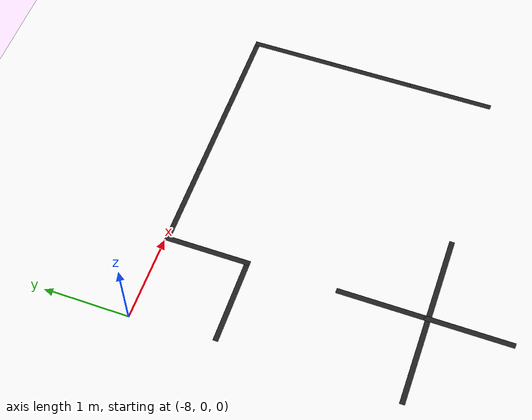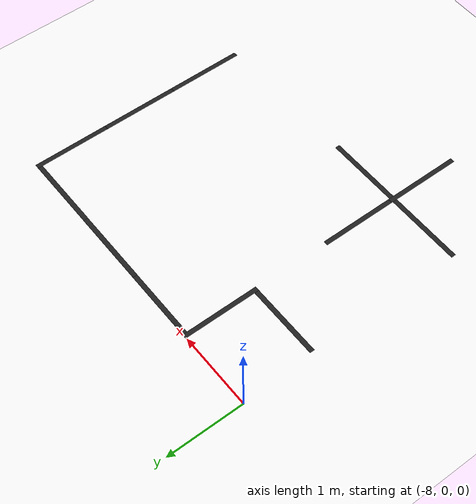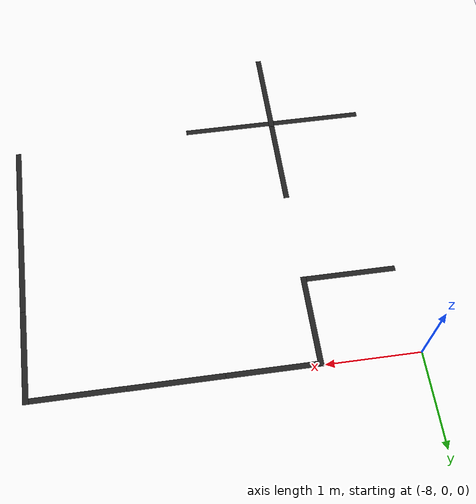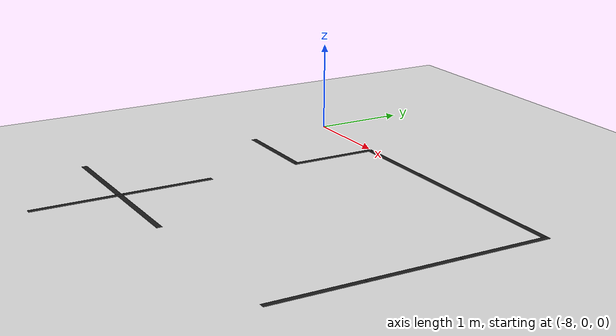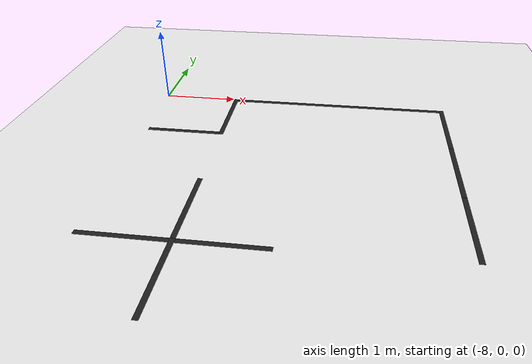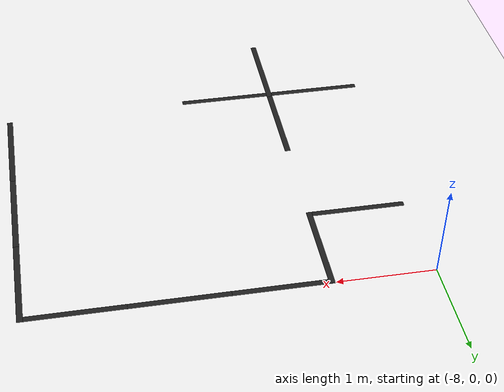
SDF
<sdf version="1.7">
 <world name="default">
  <model name="ground_plane">
   <static>1</static>
   <link name="link">
    <collision name="collision">
     <geometry><plane><normal>0 0 1</normal><size>100 100</size></plane></geometry>
     <surface>
      <contact><collide_bitmask>65535</collide_bitmask></contact>
      <friction><ode><mu>100</mu><mu2>50</mu2></ode></friction>
     </surface>
    </collision>
    <visual name="visual">
     <cast_shadows>0</cast_shadows>
     <geometry><plane><normal>0 0 1</normal><size>100 100</size></plane></geometry>
     <material>
      <script><uri>file://media/materials/scripts/gazebo.material</uri><name>Gazebo/White</name></script>
     </material>
    </visual>
   </link>
  </model>
  <model name="right_segment_1">
   <link name="right_link">
    <inertial>
     <mass>1</mass>
     <inertia>
      <ixx>0.166667</ixx>
      <ixy>0</ixy>
      <ixz>0</ixz>
      <iyy>0.166667</iyy>
      <iyz>0</iyz>
      <izz>0.166667</izz>
     </inertia>
    </inertial>
    <visual name="visual">
     <geometry><box><size>0.06 1 0.000937</size></box></geometry>
     <material>
      <script><name>Gazebo/Black</name><uri>file://media/materials/scripts/gazebo.material</uri></script>
      <shader type="pixel"><normal_map>__default__</normal_map></shader>
      <ambient>0 0 0 1</ambient>
      <diffuse>0 0 0 1</diffuse>
      <specular>0.1 0.1 0.1 1</specular>
      <emissive>0 0 0 1</emissive>
     </material>
    </visual>
    <collision name="collision">
     <geometry><box><size>0.06 1 0.000937</size></box></geometry>
     <surface>
      <friction>
       <ode><mu>1</mu><mu2>1</mu2><fdir1>0 0 0</fdir1><slip1>0</slip1><slip2>0</slip2></ode>
       <torsional>
        <coefficient>1</coefficient>
        <patch_radius>0</patch_radius>
        <surface_radius>0</surface_radius>
        <use_patch_radius>1</use_patch_radius>
        <ode><slip>0</slip></ode>
       </torsional>
      </friction>
      <bounce><restitution_coefficient>0</restitution_coefficient><threshold>1e+06</threshold></bounce>
      <contact>
       <collide_without_contact>0</collide_without_contact>
       <collide_without_contact_bitmask>1</collide_without_contact_bitmask>
       <collide_bitmask>1</collide_bitmask>
       <ode>
        <soft_cfm>0</soft_cfm>
        <soft_erp>0.2</soft_erp>
        <kp>1e+13</kp>
        <kd>1</kd>
        <max_vel>0.01</max_vel>
        <min_depth>0</min_depth>
       </ode>
       <bullet>
        <split_impulse>1</split_impulse>
        <split_impulse_penetration_threshold>-0.01</split_impulse_penetration_threshold>
        <soft_cfm>0</soft_cfm>
        <soft_erp>0.2</soft_erp>
        <kp>1e+13</kp>
        <kd>1</kd>
       </bullet>
      </contact>
     </surface>
    </collision>
   </link>
   <static>1</static>
   <pose>-6.96035 -0.49852 0.000468 0 -0 1.4e-05</pose>
  </model>
  <model name="right_segment_3">
   <link name="right_link">
    <inertial>
     <mass>1</mass>
     <inertia>
      <ixx>0.166667</ixx>
      <ixy>0</ixy>
      <ixz>0</ixz>
      <iyy>0.166667</iyy>
      <iyz>0</iyz>
      <izz>0.166667</izz>
     </inertia>
    </inertial>
    <visual name="visual">
     <geometry><box><size>0.06 1 0.000937</size></box></geometry>
     <material>
      <script><name>Gazebo/Black</name><uri>file://media/materials/scripts/gazebo.material</uri></script>
      <shader type="pixel"><normal_map>__default__</normal_map></shader>
      <ambient>0 0 0 1</ambient>
      <diffuse>0 0 0 1</diffuse>
      <specular>0.1 0.1 0.1 1</specular>
      <emissive>0 0 0 1</emissive>
     </material>
    </visual>
    <collision name="collision">
     <geometry><box><size>0.06 1 0.000937</size></box></geometry>
     <surface>
      <friction>
       <ode><mu>1</mu><mu2>1</mu2><fdir1>0 0 0</fdir1><slip1>0</slip1><slip2>0</slip2></ode>
       <torsional>
        <coefficient>1</coefficient>
        <patch_radius>0</patch_radius>
        <surface_radius>0</surface_radius>
        <use_patch_radius>1</use_patch_radius>
        <ode><slip>0</slip></ode>
       </torsional>
      </friction>
      <bounce><restitution_coefficient>0</restitution_coefficient><threshold>1e+06</threshold></bounce>
      <contact>
       <collide_without_contact>0</collide_without_contact>
       <collide_without_contact_bitmask>1</collide_without_contact_bitmask>
       <collide_bitmask>1</collide_bitmask>
       <ode>
        <soft_cfm>0</soft_cfm>
        <soft_erp>0.2</soft_erp>
        <kp>1e+13</kp>
        <kd>1</kd>
        <max_vel>0.01</max_vel>
        <min_depth>0</min_depth>
       </ode>
       <bullet>
        <split_impulse>1</split_impulse>
        <split_impulse_penetration_threshold>-0.01</split_impulse_penetration_threshold>
        <soft_cfm>0</soft_cfm>
        <soft_erp>0.2</soft_erp>
        <kp>1e+13</kp>
        <kd>1</kd>
       </bullet>
      </contact>
     </surface>
    </collision>
   </link>
   <static>1</static>
   <pose>-6.95925 -2.49328 0.000468 0 -0 1.4e-05</pose>
  </model>
  <model name="right_segment_4">
   <link name="right_link">
    <inertial>
     <mass>1</mass>
     <inertia>
      <ixx>0.166667</ixx>
      <ixy>0</ixy>
      <ixz>0</ixz>
      <iyy>0.166667</iyy>
      <iyz>0</iyz>
      <izz>0.166667</izz>
     </inertia>
    </inertial>
    <visual name="visual">
     <geometry><box><size>0.06 1 0.000937</size></box></geometry>
     <material>
      <script><name>Gazebo/Black</name><uri>file://media/materials/scripts/gazebo.material</uri></script>
      <shader type="pixel"><normal_map>__default__</normal_map></shader>
      <ambient>0 0 0 1</ambient>
      <diffuse>0 0 0 1</diffuse>
      <specular>0.1 0.1 0.1 1</specular>
      <emissive>0 0 0 1</emissive>
     </material>
    </visual>
    <collision name="collision">
     <geometry><box><size>0.06 1 0.000937</size></box></geometry>
     <surface>
      <friction>
       <ode><mu>1</mu><mu2>1</mu2><fdir1>0 0 0</fdir1><slip1>0</slip1><slip2>0</slip2></ode>
       <torsional>
        <coefficient>1</coefficient>
        <patch_radius>0</patch_radius>
        <surface_radius>0</surface_radius>
        <use_patch_radius>1</use_patch_radius>
        <ode><slip>0</slip></ode>
       </torsional>
      </friction>
      <bounce><restitution_coefficient>0</restitution_coefficient><threshold>1e+06</threshold></bounce>
      <contact>
       <collide_without_contact>0</collide_without_contact>
       <collide_without_contact_bitmask>1</collide_without_contact_bitmask>
       <collide_bitmask>1</collide_bitmask>
       <ode>
        <soft_cfm>0</soft_cfm>
        <soft_erp>0.2</soft_erp>
        <kp>1e+13</kp>
        <kd>1</kd>
        <max_vel>0.01</max_vel>
        <min_depth>0</min_depth>
       </ode>
       <bullet>
        <split_impulse>1</split_impulse>
        <split_impulse_penetration_threshold>-0.01</split_impulse_penetration_threshold>
        <soft_cfm>0</soft_cfm>
        <soft_erp>0.2</soft_erp>
        <kp>1e+13</kp>
        <kd>1</kd>
       </bullet>
      </contact>
     </surface>
    </collision>
   </link>
   <static>1</static>
   <pose>-6.95916 -3.47904 0.000468 0 -0 1.4e-05</pose>
  </model>
  <model name="segment_3">
   <link name="straight_link">
    <inertial>
     <mass>1</mass>
     <inertia>
      <ixx>0.166667</ixx>
      <ixy>0</ixy>
      <ixz>0</ixz>
      <iyy>0.166667</iyy>
      <iyz>0</iyz>
      <izz>0.166667</izz>
     </inertia>
    </inertial>
    <visual name="visual">
     <geometry><box><size>1 0.06 0.000937</size></box></geometry>
     <material>
      <script><name>Gazebo/Black</name><uri>file://media/materials/scripts/gazebo.material</uri></script>
      <shader type="pixel"><normal_map>__default__</normal_map></shader>
      <ambient>0 0 0 1</ambient>
      <diffuse>0 0 0 1</diffuse>
      <specular>0.1 0.1 0.1 1</specular>
      <emissive>0 0 0 1</emissive>
     </material>
    </visual>
    <collision name="collision">
     <geometry><box><size>1 0.06 0.000937</size></box></geometry>
     <surface>
      <friction>
       <ode><mu>1</mu><mu2>1</mu2><fdir1>0 0 0</fdir1><slip1>0</slip1><slip2>0</slip2></ode>
       <torsional>
        <coefficient>1</coefficient>
        <patch_radius>0</patch_radius>
        <surface_radius>0</surface_radius>
        <use_patch_radius>1</use_patch_radius>
        <ode><slip>0</slip></ode>
       </torsional>
      </friction>
      <bounce><restitution_coefficient>0</restitution_coefficient><threshold>1e+06</threshold></bounce>
      <contact>
       <collide_without_contact>0</collide_without_contact>
       <collide_without_contact_bitmask>1</collide_without_contact_bitmask>
       <collide_bitmask>1</collide_bitmask>
       <ode>
        <soft_cfm>0</soft_cfm>
        <soft_erp>0.2</soft_erp>
        <kp>1e+13</kp>
        <kd>1</kd>
        <max_vel>0.01</max_vel>
        <min_depth>0</min_depth>
       </ode>
       <bullet>
        <split_impulse>1</split_impulse>
        <split_impulse_penetration_threshold>-0.01</split_impulse_penetration_threshold>
        <soft_cfm>0</soft_cfm>
        <soft_erp>0.2</soft_erp>
        <kp>1e+13</kp>
        <kd>1</kd>
       </bullet>
      </contact>
     </surface>
    </collision>
   </link>
   <static>1</static>
   <pose>-7.4559 -0.969503 0 0 -0 0</pose>
  </model>
  <model name="segment_2">
   <link name="straight_link">
    <inertial>
     <mass>1</mass>
     <inertia>
      <ixx>0.166667</ixx>
      <ixy>0</ixy>
      <ixz>0</ixz>
      <iyy>0.166667</iyy>
      <iyz>0</iyz>
      <izz>0.166667</izz>
     </inertia>
    </inertial>
    <visual name="visual">
     <geometry><box><size>1 0.06 0.000937</size></box></geometry>
     <material>
      <script><name>Gazebo/Black</name><uri>file://media/materials/scripts/gazebo.material</uri></script>
      <shader type="pixel"><normal_map>__default__</normal_map></shader>
      <ambient>0 0 0 1</ambient>
      <diffuse>0 0 0 1</diffuse>
      <specular>0.1 0.1 0.1 1</specular>
      <emissive>0 0 0 1</emissive>
     </material>
    </visual>
    <collision name="collision">
     <geometry><box><size>1 0.06 0.000937</size></box></geometry>
     <surface>
      <friction>
       <ode><mu>1</mu><mu2>1</mu2><fdir1>0 0 0</fdir1><slip1>0</slip1><slip2>0</slip2></ode>
       <torsional>
        <coefficient>1</coefficient>
        <patch_radius>0</patch_radius>
        <surface_radius>0</surface_radius>
        <use_patch_radius>1</use_patch_radius>
        <ode><slip>0</slip></ode>
       </torsional>
      </friction>
      <bounce><restitution_coefficient>0</restitution_coefficient><threshold>1e+06</threshold></bounce>
      <contact>
       <collide_without_contact>0</collide_without_contact>
       <collide_without_contact_bitmask>1</collide_without_contact_bitmask>
       <collide_bitmask>1</collide_bitmask>
       <ode>
        <soft_cfm>0</soft_cfm>
        <soft_erp>0.2</soft_erp>
        <kp>1e+13</kp>
        <kd>1</kd>
        <max_vel>0.01</max_vel>
        <min_depth>0</min_depth>
       </ode>
       <bullet>
        <split_impulse>1</split_impulse>
        <split_impulse_penetration_threshold>-0.01</split_impulse_penetration_threshold>
        <soft_cfm>0</soft_cfm>
        <soft_erp>0.2</soft_erp>
        <kp>1e+13</kp>
        <kd>1</kd>
       </bullet>
      </contact>
     </surface>
    </collision>
   </link>
   <static>1</static>
   <pose>-6.4877 -0.020685 0 0 -0 0</pose>
  </model>
  <model name="segment_4">
   <link name="straight_link">
    <inertial>
     <mass>1</mass>
     <inertia>
      <ixx>0.166667</ixx>
      <ixy>0</ixy>
      <ixz>0</ixz>
      <iyy>0.166667</iyy>
      <iyz>0</iyz>
      <izz>0.166667</izz>
     </inertia>
    </inertial>
    <visual name="visual">
     <geometry><box><size>1 0.06 0.000937</size></box></geometry>
     <material>
      <script><name>Gazebo/Black</name><uri>file://media/materials/scripts/gazebo.material</uri></script>
      <shader type="pixel"><normal_map>__default__</normal_map></shader>
      <ambient>0 0 0 1</ambient>
      <diffuse>0 0 0 1</diffuse>
      <specular>0.1 0.1 0.1 1</specular>
      <emissive>0 0 0 1</emissive>
     </material>
    </visual>
    <collision name="collision">
     <geometry><box><size>1 0.06 0.000937</size></box></geometry>
     <surface>
      <friction>
       <ode><mu>1</mu><mu2>1</mu2><fdir1>0 0 0</fdir1><slip1>0</slip1><slip2>0</slip2></ode>
       <torsional>
        <coefficient>1</coefficient>
        <patch_radius>0</patch_radius>
        <surface_radius>0</surface_radius>
        <use_patch_radius>1</use_patch_radius>
        <ode><slip>0</slip></ode>
       </torsional>
      </friction>
      <bounce><restitution_coefficient>0</restitution_coefficient><threshold>1e+06</threshold></bounce>
      <contact>
       <collide_without_contact>0</collide_without_contact>
       <collide_without_contact_bitmask>1</collide_without_contact_bitmask>
       <collide_bitmask>1</collide_bitmask>
       <ode>
        <soft_cfm>0</soft_cfm>
        <soft_erp>0.2</soft_erp>
        <kp>1e+13</kp>
        <kd>1</kd>
        <max_vel>0.01</max_vel>
        <min_depth>0</min_depth>
       </ode>
       <bullet>
        <split_impulse>1</split_impulse>
        <split_impulse_penetration_threshold>-0.01</split_impulse_penetration_threshold>
        <soft_cfm>0</soft_cfm>
        <soft_erp>0.2</soft_erp>
        <kp>1e+13</kp>
        <kd>1</kd>
       </bullet>
      </contact>
     </surface>
    </collision>
   </link>
   <static>1</static>
   <pose>-5.48999 -0.021059 0 0 -0 0</pose>
  </model>
  <model name="segment_5">
   <link name="straight_link">
    <inertial>
     <mass>1</mass>
     <inertia>
      <ixx>0.166667</ixx>
      <ixy>0</ixy>
      <ixz>0</ixz>
      <iyy>0.166667</iyy>
      <iyz>0</iyz>
      <izz>0.166667</izz>
     </inertia>
    </inertial>
    <visual name="visual">
     <geometry><box><size>1 0.06 0.000937</size></box></geometry>
     <material>
      <script><name>Gazebo/Black</name><uri>file://media/materials/scripts/gazebo.material</uri></script>
      <shader type="pixel"><normal_map>__default__</normal_map></shader>
      <ambient>0 0 0 1</ambient>
      <diffuse>0 0 0 1</diffuse>
      <specular>0.1 0.1 0.1 1</specular>
      <emissive>0 0 0 1</emissive>
     </material>
    </visual>
    <collision name="collision">
     <geometry><box><size>1 0.06 0.000937</size></box></geometry>
     <surface>
      <friction>
       <ode><mu>1</mu><mu2>1</mu2><fdir1>0 0 0</fdir1><slip1>0</slip1><slip2>0</slip2></ode>
       <torsional>
        <coefficient>1</coefficient>
        <patch_radius>0</patch_radius>
        <surface_radius>0</surface_radius>
        <use_patch_radius>1</use_patch_radius>
        <ode><slip>0</slip></ode>
       </torsional>
      </friction>
      <bounce><restitution_coefficient>0</restitution_coefficient><threshold>1e+06</threshold></bounce>
      <contact>
       <collide_without_contact>0</collide_without_contact>
       <collide_without_contact_bitmask>1</collide_without_contact_bitmask>
       <collide_bitmask>1</collide_bitmask>
       <ode>
        <soft_cfm>0</soft_cfm>
        <soft_erp>0.2</soft_erp>
        <kp>1e+13</kp>
        <kd>1</kd>
        <max_vel>0.01</max_vel>
        <min_depth>0</min_depth>
       </ode>
       <bullet>
        <split_impulse>1</split_impulse>
        <split_impulse_penetration_threshold>-0.01</split_impulse_penetration_threshold>
        <soft_cfm>0</soft_cfm>
        <soft_erp>0.2</soft_erp>
        <kp>1e+13</kp>
        <kd>1</kd>
       </bullet>
      </contact>
     </surface>
    </collision>
   </link>
   <static>1</static>
   <pose>-4.48906 -0.022051 0 0 -0 0</pose>
  </model>
  <model name="right_segment_0">
   <link name="right_link">
    <inertial>
     <mass>1</mass>
     <inertia>
      <ixx>0.166667</ixx>
      <ixy>0</ixy>
      <ixz>0</ixz>
      <iyy>0.166667</iyy>
      <iyz>0</iyz>
      <izz>0.166667</izz>
     </inertia>
    </inertial>
    <visual name="visual">
     <geometry><box><size>0.06 1 0.000937</size></box></geometry>
     <material>
      <script><name>Gazebo/Black</name><uri>file://media/materials/scripts/gazebo.material</uri></script>
      <shader type="pixel"><normal_map>__default__</normal_map></shader>
      <ambient>0 0 0 1</ambient>
      <diffuse>0 0 0 1</diffuse>
      <specular>0.1 0.1 0.1 1</specular>
      <emissive>0 0 0 1</emissive>
     </material>
    </visual>
    <collision name="collision">
     <geometry><box><size>0.06 1 0.000937</size></box></geometry>
     <surface>
      <friction>
       <ode><mu>1</mu><mu2>1</mu2><fdir1>0 0 0</fdir1><slip1>0</slip1><slip2>0</slip2></ode>
       <torsional>
        <coefficient>1</coefficient>
        <patch_radius>0</patch_radius>
        <surface_radius>0</surface_radius>
        <use_patch_radius>1</use_patch_radius>
        <ode><slip>0</slip></ode>
       </torsional>
      </friction>
      <bounce><restitution_coefficient>0</restitution_coefficient><threshold>1e+06</threshold></bounce>
      <contact>
       <collide_without_contact>0</collide_without_contact>
       <collide_without_contact_bitmask>1</collide_without_contact_bitmask>
       <collide_bitmask>1</collide_bitmask>
       <ode>
        <soft_cfm>0</soft_cfm>
        <soft_erp>0.2</soft_erp>
        <kp>1e+13</kp>
        <kd>1</kd>
        <max_vel>0.01</max_vel>
        <min_depth>0</min_depth>
       </ode>
       <bullet>
        <split_impulse>1</split_impulse>
        <split_impulse_penetration_threshold>-0.01</split_impulse_penetration_threshold>
        <soft_cfm>0</soft_cfm>
        <soft_erp>0.2</soft_erp>
        <kp>1e+13</kp>
        <kd>1</kd>
       </bullet>
      </contact>
     </surface>
    </collision>
   </link>
   <static>1</static>
   <pose>-3.98772 -0.492252 0.000468 0 -0 1.4e-05</pose>
  </model>
  <model name="right_segment_2">
   <link name="right_link">
    <inertial>
     <mass>1</mass>
     <inertia>
      <ixx>0.166667</ixx>
      <ixy>0</ixy>
      <ixz>0</ixz>
      <iyy>0.166667</iyy>
      <iyz>0</iyz>
      <izz>0.166667</izz>
     </inertia>
    </inertial>
    <visual name="visual">
     <geometry><box><size>0.06 1 0.000937</size></box></geometry>
     <material>
      <script><name>Gazebo/Black</name><uri>file://media/materials/scripts/gazebo.material</uri></script>
      <shader type="pixel"><normal_map>__default__</normal_map></shader>
      <ambient>0 0 0 1</ambient>
      <diffuse>0 0 0 1</diffuse>
      <specular>0.1 0.1 0.1 1</specular>
      <emissive>0 0 0 1</emissive>
     </material>
    </visual>
    <collision name="collision">
     <geometry><box><size>0.06 1 0.000937</size></box></geometry>
     <surface>
      <friction>
       <ode><mu>1</mu><mu2>1</mu2><fdir1>0 0 0</fdir1><slip1>0</slip1><slip2>0</slip2></ode>
       <torsional>
        <coefficient>1</coefficient>
        <patch_radius>0</patch_radius>
        <surface_radius>0</surface_radius>
        <use_patch_radius>1</use_patch_radius>
        <ode><slip>0</slip></ode>
       </torsional>
      </friction>
      <bounce><restitution_coefficient>0</restitution_coefficient><threshold>1e+06</threshold></bounce>
      <contact>
       <collide_without_contact>0</collide_without_contact>
       <collide_without_contact_bitmask>1</collide_without_contact_bitmask>
       <collide_bitmask>1</collide_bitmask>
       <ode>
        <soft_cfm>0</soft_cfm>
        <soft_erp>0.2</soft_erp>
        <kp>1e+13</kp>
        <kd>1</kd>
        <max_vel>0.01</max_vel>
        <min_depth>0</min_depth>
       </ode>
       <bullet>
        <split_impulse>1</split_impulse>
        <split_impulse_penetration_threshold>-0.01</split_impulse_penetration_threshold>
        <soft_cfm>0</soft_cfm>
        <soft_erp>0.2</soft_erp>
        <kp>1e+13</kp>
        <kd>1</kd>
       </bullet>
      </contact>
     </surface>
    </collision>
   </link>
   <static>1</static>
   <pose>-3.98819 -1.49004 0.000468 0 -0 1.4e-05</pose>
  </model>
  <model name="right_segment_6">
   <link name="right_link">
    <inertial>
     <mass>1</mass>
     <inertia>
      <ixx>0.166667</ixx>
      <ixy>0</ixy>
      <ixz>0</ixz>
      <iyy>0.166667</iyy>
      <iyz>0</iyz>
      <izz>0.166667</izz>
     </inertia>
    </inertial>
    <visual name="visual">
     <geometry><box><size>0.06 1 0.000937</size></box></geometry>
     <material>
      <script><name>Gazebo/Black</name><uri>file://media/materials/scripts/gazebo.material</uri></script>
      <shader type="pixel"><normal_map>__default__</normal_map></shader>
      <ambient>0 0 0 1</ambient>
      <diffuse>0 0 0 1</diffuse>
      <specular>0.1 0.1 0.1 1</specular>
      <emissive>0 0 0 1</emissive>
     </material>
    </visual>
    <collision name="collision">
     <geometry><box><size>0.06 1 0.000937</size></box></geometry>
     <surface>
      <friction>
       <ode><mu>1</mu><mu2>1</mu2><fdir1>0 0 0</fdir1><slip1>0</slip1><slip2>0</slip2></ode>
       <torsional>
        <coefficient>1</coefficient>
        <patch_radius>0</patch_radius>
        <surface_radius>0</surface_radius>
        <use_patch_radius>1</use_patch_radius>
        <ode><slip>0</slip></ode>
       </torsional>
      </friction>
      <bounce><restitution_coefficient>0</restitution_coefficient><threshold>1e+06</threshold></bounce>
      <contact>
       <collide_without_contact>0</collide_without_contact>
       <collide_without_contact_bitmask>1</collide_without_contact_bitmask>
       <collide_bitmask>1</collide_bitmask>
       <ode>
        <soft_cfm>0</soft_cfm>
        <soft_erp>0.2</soft_erp>
        <kp>1e+13</kp>
        <kd>1</kd>
        <max_vel>0.01</max_vel>
        <min_depth>0</min_depth>
       </ode>
       <bullet>
        <split_impulse>1</split_impulse>
        <split_impulse_penetration_threshold>-0.01</split_impulse_penetration_threshold>
        <soft_cfm>0</soft_cfm>
        <soft_erp>0.2</soft_erp>
        <kp>1e+13</kp>
        <kd>1</kd>
       </bullet>
      </contact>
     </surface>
    </collision>
   </link>
   <static>1</static>
   <pose>-3.98813 -2.48822 0.000468 0 -0 1.4e-05</pose>
  </model>
  <model name="segment_14">
   <link name="straight_link">
    <inertial>
     <mass>1</mass>
     <inertia>
      <ixx>0.166667</ixx>
      <ixy>0</ixy>
      <ixz>0</ixz>
      <iyy>0.166667</iyy>
      <iyz>0</iyz>
      <izz>0.166667</izz>
     </inertia>
    </inertial>
    <visual name="visual">
     <geometry><box><size>1 0.06 0.000937</size></box></geometry>
     <material>
      <script><name>Gazebo/Black</name><uri>file://media/materials/scripts/gazebo.material</uri></script>
      <shader type="pixel"><normal_map>__default__</normal_map></shader>
      <ambient>0 0 0 1</ambient>
      <diffuse>0 0 0 1</diffuse>
      <specular>0.1 0.1 0.1 1</specular>
      <emissive>0 0 0 1</emissive>
     </material>
    </visual>
    <collision name="collision">
     <geometry><box><size>1 0.06 0.000937</size></box></geometry>
     <surface>
      <friction>
       <ode><mu>1</mu><mu2>1</mu2><fdir1>0 0 0</fdir1><slip1>0</slip1><slip2>0</slip2></ode>
       <torsional>
        <coefficient>1</coefficient>
        <patch_radius>0</patch_radius>
        <surface_radius>0</surface_radius>
        <use_patch_radius>1</use_patch_radius>
        <ode><slip>0</slip></ode>
       </torsional>
      </friction>
      <bounce><restitution_coefficient>0</restitution_coefficient><threshold>1e+06</threshold></bounce>
      <contact>
       <collide_without_contact>0</collide_without_contact>
       <collide_without_contact_bitmask>1</collide_without_contact_bitmask>
       <collide_bitmask>1</collide_bitmask>
       <ode>
        <soft_cfm>0</soft_cfm>
        <soft_erp>0.2</soft_erp>
        <kp>1e+13</kp>
        <kd>1</kd>
        <max_vel>0.01</max_vel>
        <min_depth>0</min_depth>
       </ode>
       <bullet>
        <split_impulse>1</split_impulse>
        <split_impulse_penetration_threshold>-0.01</split_impulse_penetration_threshold>
        <soft_cfm>0</soft_cfm>
        <soft_erp>0.2</soft_erp>
        <kp>1e+13</kp>
        <kd>1</kd>
       </bullet>
      </contact>
     </surface>
    </collision>
   </link>
   <static>1</static>
   <pose>-7.48513 -3.02642 0 0 -0 0</pose>
  </model>
  <model name="segment_15">
   <link name="straight_link">
    <inertial>
     <mass>1</mass>
     <inertia>
      <ixx>0.166667</ixx>
      <ixy>0</ixy>
      <ixz>0</ixz>
      <iyy>0.166667</iyy>
      <iyz>0</iyz>
      <izz>0.166667</izz>
     </inertia>
    </inertial>
    <visual name="visual">
     <geometry><box><size>1 0.06 0.000937</size></box></geometry>
     <material>
      <script><name>Gazebo/Black</name><uri>file://media/materials/scripts/gazebo.material</uri></script>
      <shader type="pixel"><normal_map>__default__</normal_map></shader>
      <ambient>0 0 0 1</ambient>
      <diffuse>0 0 0 1</diffuse>
      <specular>0.1 0.1 0.1 1</specular>
      <emissive>0 0 0 1</emissive>
     </material>
    </visual>
    <collision name="collision">
     <geometry><box><size>1 0.06 0.000937</size></box></geometry>
     <surface>
      <friction>
       <ode><mu>1</mu><mu2>1</mu2><fdir1>0 0 0</fdir1><slip1>0</slip1><slip2>0</slip2></ode>
       <torsional>
        <coefficient>1</coefficient>
        <patch_radius>0</patch_radius>
        <surface_radius>0</surface_radius>
        <use_patch_radius>1</use_patch_radius>
        <ode><slip>0</slip></ode>
       </torsional>
      </friction>
      <bounce><restitution_coefficient>0</restitution_coefficient><threshold>1e+06</threshold></bounce>
      <contact>
       <collide_without_contact>0</collide_without_contact>
       <collide_without_contact_bitmask>1</collide_without_contact_bitmask>
       <collide_bitmask>1</collide_bitmask>
       <ode>
        <soft_cfm>0</soft_cfm>
        <soft_erp>0.2</soft_erp>
        <kp>1e+13</kp>
        <kd>1</kd>
        <max_vel>0.01</max_vel>
        <min_depth>0</min_depth>
       </ode>
       <bullet>
        <split_impulse>1</split_impulse>
        <split_impulse_penetration_threshold>-0.01</split_impulse_penetration_threshold>
        <soft_cfm>0</soft_cfm>
        <soft_erp>0.2</soft_erp>
        <kp>1e+13</kp>
        <kd>1</kd>
       </bullet>
      </contact>
     </surface>
    </collision>
   </link>
   <static>1</static>
   <pose>-6.45146 -3.02689 0 0 -0 0</pose>
  </model>
 </world>
</sdf>
